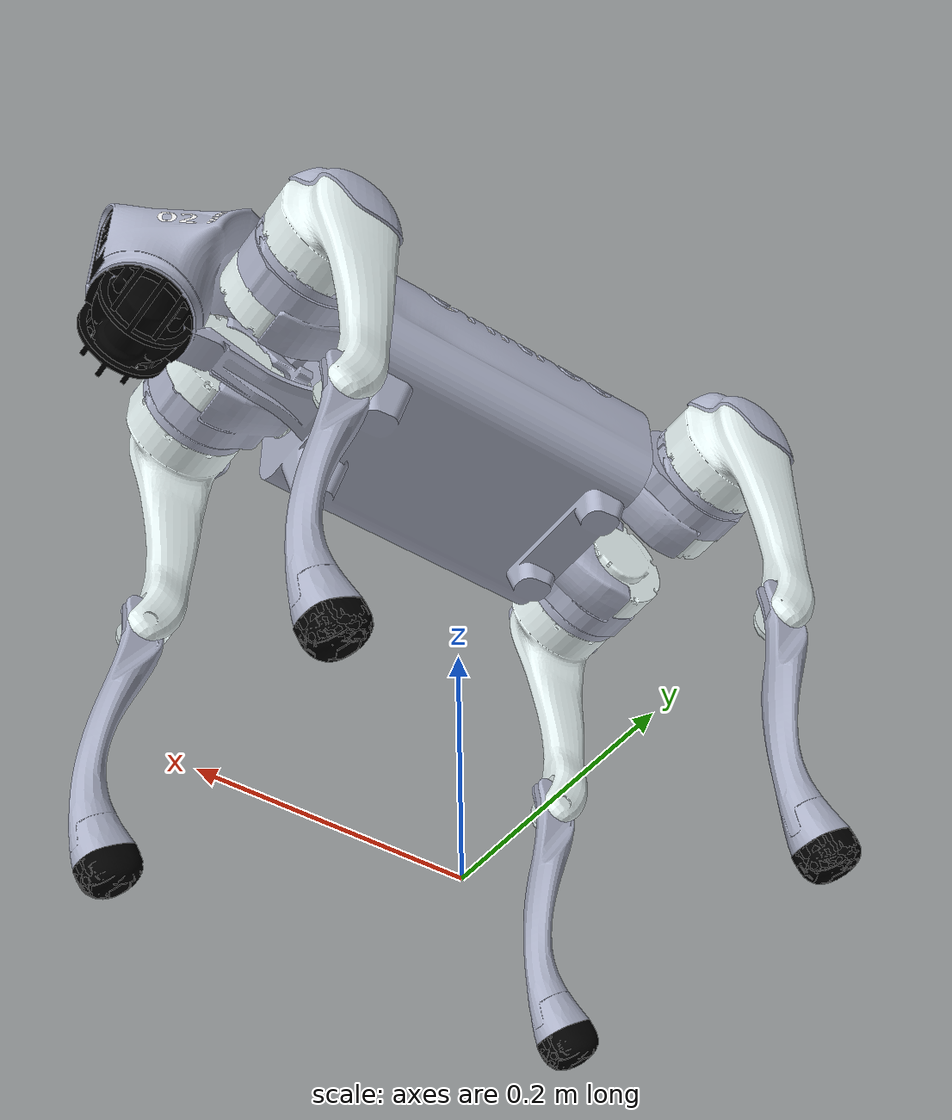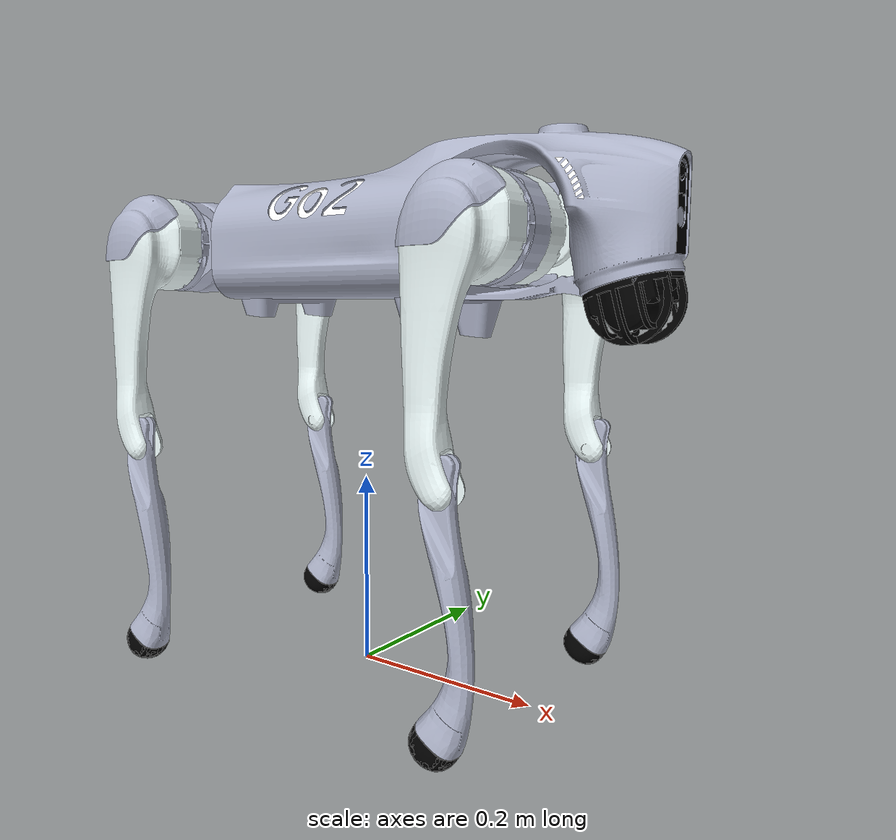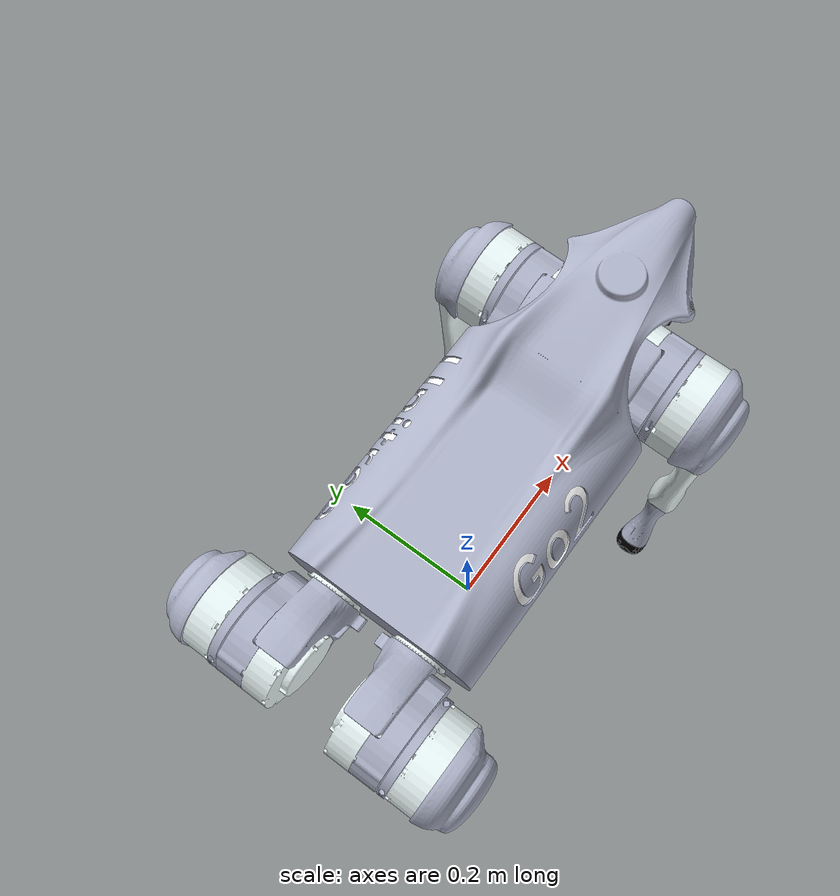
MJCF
<mujoco model="go2">
    <compiler angle="radian" meshdir="assets"/>

    <default>
        <default class="go2">
            <geom friction="0.6" margin="0.001" condim="1" />
            <joint axis="0 1 0" damping="2.0" armature="0.01" />
            <position forcelimited="true" forcerange="-23.7 23.7" kp="100" kv="0.0" />
            <default class="abduction">
                <joint axis="1 0 0" range="-1.0472 1.0472" />
                <position ctrlrange="-1.0472 1.0472" />
            </default>
            <default class="hip">
                <default class="front_hip">
                    <joint range="-1.5708 3.4907" />
                    <position ctrlrange="-1.5708 3.4907" />
                </default>
                <default class="back_hip">
                    <joint range="-0.5236 4.5379" />
                    <position ctrlrange="-0.5236 4.5379" />
                </default>
            </default>
            <default class="knee">
                <joint range="-2.7227 -0.83776" />
                <position forcerange="-45.43 45.43" ctrlrange="-2.7227 -0.83776" />
            </default>
            <default class="visual">
                <geom type="mesh" contype="0" conaffinity="0" group="2" />
            </default>
            <default class="go2foot">
                <site group="1" pos="-0.002 0 -0.213" />
                <geom rgba="0.231373 0.380392 0.705882 1" />
            </default>
            <default class="collision">
                <geom group="3" contype="0" conaffinity="1" />
                <default class="foot">
                    <geom type="sphere" size="0.0175" pos="-0.002 0 -0.213" solimp="0.015 1 0.031"
                        friction="0.8 0.02 0.01" condim="3" />
                </default>
            </default>
        </default>
    </default>

    <asset>
        <material name="metal" rgba=".9 .95 .95 1" />
        <material name="black" rgba="0 0 0 1" />
        <material name="white" rgba="1 1 1 1" />
        <material name="gray" rgba="0.671705 0.692426 0.774270 1" />

        <mesh file="base_0.obj" />
        <mesh file="base_1.obj" />
        <mesh file="base_2.obj" />
        <mesh file="base_3.obj" />
        <mesh file="base_4.obj" />
        <mesh file="hip_0.obj" />
        <mesh file="hip_1.obj" />
        <mesh file="thigh_0.obj" />
        <mesh file="thigh_1.obj" />
        <mesh file="thigh_mirror_0.obj" />
        <mesh file="thigh_mirror_1.obj" />
        <mesh file="calf_0.obj" />
        <mesh file="calf_1.obj" />
        <mesh file="calf_mirror_0.obj" />
        <mesh file="calf_mirror_1.obj" />
        <mesh file="foot.obj" />
    </asset>

    <worldbody>
        <body name="trunk" pos="0 0 0.445" childclass="go2">
            <camera name="track" pos="0.846 -1.465 0.916"
                xyaxes="0.866 0.500 0.000 -0.171 0.296 0.940" mode="trackcom" />
            <inertial pos="0.021112 0 -0.005366" quat="-0.000543471 0.713435 -0.00173769 0.700719"
                mass="6.921"
                diaginertia="0.107027 0.0980771 0.0244531" />
            <freejoint />
            <geom mesh="base_0" material="black" class="visual" />
            <geom mesh="base_1" material="black" class="visual" />
            <geom mesh="base_2" material="black" class="visual" />
            <geom mesh="base_3" material="white" class="visual" />
            <geom mesh="base_4" material="gray" class="visual" />
            <site name="imu" pos="-0.02557 0 0.04232" />
            <site name="torso"/>
            <site name="head" pos=".3 0 0" size="0.02" group="5"/>
            <body name="FR_hip" pos="0.1934 -0.0465 0">
                <inertial pos="-0.0054 -0.00194 -0.000105"
                    quat="0.498237 0.505462 0.499245 0.497014" mass="0.678"
                    diaginertia="0.00088403 0.000596003 0.000479967" />
                <joint name="FR_hip_joint" class="abduction" />
                <geom mesh="hip_0" material="metal" class="visual" quat="4.63268e-05 1 0 0" />
                <geom mesh="hip_1" material="gray" class="visual" quat="4.63268e-05 1 0 0" />
                <body name="FR_thigh" pos="0 -0.0955 0">
                    <inertial pos="-0.00374 0.0223 -0.0327"
                        quat="0.551623 -0.0200632 0.0847635 0.829533" mass="1.152"
                        diaginertia="0.00594973 0.00584149 0.000878787" />
                    <joint name="FR_thigh_joint" class="front_hip" />
                    <geom mesh="thigh_mirror_0" material="metal" class="visual" />
                    <geom mesh="thigh_mirror_1" material="gray" class="visual" />
                    <body name="FR_calf" pos="0 0 -0.213">
                        <inertial pos="0.00629595 0.000622121 -0.141417"
                            quat="0.703508 -0.00450087 0.00154099 0.710672"
                            mass="0.241352" diaginertia="0.0014901 0.00146356 5.31397e-05" />
                        <joint name="FR_calf_joint" class="knee" />
                        <geom mesh="calf_mirror_0" material="gray" class="visual" />
                        <geom mesh="calf_mirror_1" material="black" class="visual" />
                        <geom pos="0 0 -0.213" mesh="foot" class="visual" material="black" />
                        <geom name="FR" class="foot" />
                        <site name="FR" class="go2foot" />
                    </body>
                </body>
            </body>
            <body name="FL_hip" pos="0.1934 0.0465 0">
                <inertial pos="-0.0054 0.00194 -0.000105" quat="0.497014 0.499245 0.505462 0.498237"
                    mass="0.678"
                    diaginertia="0.00088403 0.000596003 0.000479967" />
                <joint name="FL_hip_joint" class="abduction" />
                <geom mesh="hip_0" material="metal" class="visual" />
                <geom mesh="hip_1" material="gray" class="visual" />
                <body name="FL_thigh" pos="0 0.0955 0">
                    <inertial pos="-0.00374 -0.0223 -0.0327"
                        quat="0.829533 0.0847635 -0.0200632 0.551623" mass="1.152"
                        diaginertia="0.00594973 0.00584149 0.000878787" />
                    <joint name="FL_thigh_joint" class="front_hip" />
                    <geom mesh="thigh_0" material="metal" class="visual" />
                    <geom mesh="thigh_1" material="gray" class="visual" />
                    <body name="FL_calf" pos="0 0 -0.213">
                        <inertial pos="0.00629595 -0.000622121 -0.141417"
                            quat="0.710672 0.00154099 -0.00450087 0.703508"
                            mass="0.241352" diaginertia="0.0014901 0.00146356 5.31397e-05" />
                        <joint name="FL_calf_joint" class="knee" />
                        <geom mesh="calf_0" material="gray" class="visual" />
                        <geom mesh="calf_1" material="black" class="visual" />
                        <geom pos="0 0 -0.213" mesh="foot" class="visual" material="black" />
                        <geom name="FL" class="foot" />
                        <site name="FL" class="go2foot" />
                    </body>
                </body>
            </body>
            <body name="HR_hip" pos="-0.1934 -0.0465 0">
                <inertial pos="0.0054 -0.00194 -0.000105" quat="0.499245 0.497014 0.498237 0.505462"
                    mass="0.678"
                    diaginertia="0.00088403 0.000596003 0.000479967" />
                <joint name="RR_hip_joint" class="abduction" />
                <geom mesh="hip_0" material="metal" class="visual"
                    quat="2.14617e-09 4.63268e-05 4.63268e-05 -1" />
                <geom mesh="hip_1" material="gray" class="visual"
                    quat="2.14617e-09 4.63268e-05 4.63268e-05 -1" />
                <body name="RR_thigh" pos="0 -0.0955 0">
                    <inertial pos="-0.00374 0.0223 -0.0327"
                        quat="0.551623 -0.0200632 0.0847635 0.829533" mass="1.152"
                        diaginertia="0.00594973 0.00584149 0.000878787" />
                    <joint name="RR_thigh_joint" class="back_hip" />
                    <geom mesh="thigh_mirror_0" material="metal" class="visual" />
                    <geom mesh="thigh_mirror_1" material="gray" class="visual" />
                    <body name="RR_calf" pos="0 0 -0.213">
                        <inertial pos="0.00629595 0.000622121 -0.141417"
                            quat="0.703508 -0.00450087 0.00154099 0.710672"
                            mass="0.241352" diaginertia="0.0014901 0.00146356 5.31397e-05" />
                        <joint name="RR_calf_joint" class="knee" />
                        <geom mesh="calf_mirror_0" material="gray" class="visual" />
                        <geom mesh="calf_mirror_1" material="black" class="visual" />
                        <geom pos="0 0 -0.213" mesh="foot" class="visual" material="black" />
                        <geom name="HR" class="foot" />
                        <site name="RR" class="go2foot" />
                    </body>
                </body>
            </body>
            <body name="HL_hip" pos="-0.1934 0.0465 0">
                <inertial pos="0.0054 0.00194 -0.000105" quat="0.505462 0.498237 0.497014 0.499245"
                    mass="0.678"
                    diaginertia="0.00088403 0.000596003 0.000479967" />
                <joint name="RL_hip_joint" class="abduction" />
                <geom mesh="hip_0" material="metal" class="visual" quat="4.63268e-05 0 1 0" />
                <geom mesh="hip_1" material="gray" class="visual" quat="4.63268e-05 0 1 0" />
                <body name="RL_thigh" pos="0 0.0955 0">
                    <inertial pos="-0.00374 -0.0223 -0.0327"
                        quat="0.829533 0.0847635 -0.0200632 0.551623" mass="1.152"
                        diaginertia="0.00594973 0.00584149 0.000878787" />
                    <joint name="RL_thigh_joint" class="back_hip" />
                    <geom mesh="thigh_0" material="metal" class="visual" />
                    <geom mesh="thigh_1" material="gray" class="visual" />
                    <body name="RL_calf" pos="0 0 -0.213">
                        <inertial pos="0.00629595 -0.000622121 -0.141417"
                            quat="0.710672 0.00154099 -0.00450087 0.703508"
                            mass="0.241352" diaginertia="0.0014901 0.00146356 5.31397e-05" />
                        <joint name="RL_calf_joint" class="knee" />
                        <geom mesh="calf_0" material="gray" class="visual" />
                        <geom mesh="calf_1" material="black" class="visual" />
                        <geom pos="0 0 -0.213" mesh="foot" class="visual" material="black" />
                        <geom name="HL" class="foot" />
                        <site name="RL" class="go2foot" />
                    </body>
                </body>
            </body>
        </body>
    </worldbody>
</mujoco>
